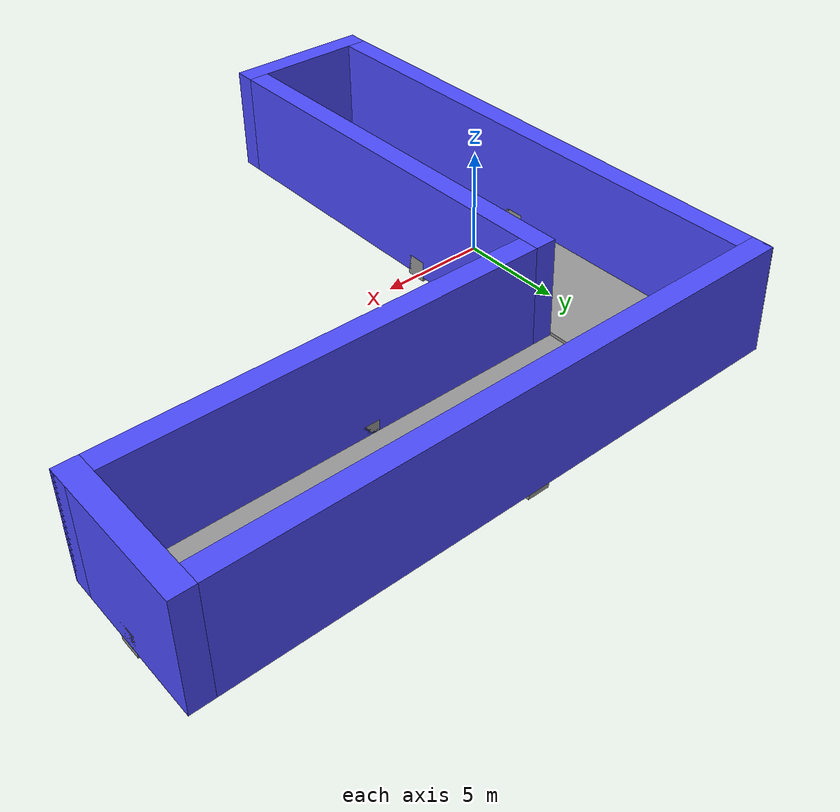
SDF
<?xml version='1.0'?>
<sdf version='1.6'>
  <model name='Corner_pool'>
    <link name='link_0'>
      <pose frame=''>0 0 0.5 0 -0 0</pose>
      <gravity>1</gravity>
      <self_collide>0</self_collide>
      <kinematic>0</kinematic>
      <visual name='visual'>
        <pose frame=''>0 0 0 0 -0 0</pose>
        <geometry>
          <box>
            <size>5 25 0.3</size>
          </box>
        </geometry>
        <material>
          <lighting>1</lighting>
          <script>
            <uri>file://media/materials/scripts/gazebo.material</uri>
            <name>Gazebo/Grey</name>
          </script>
          <ambient>1 1 1 1</ambient>
          <diffuse>0.7 0.7 0.7 1</diffuse>
          <specular>0.01 0.01 0.01 1</specular>
          <emissive>0 0 0 1</emissive>
          <shader type='vertex'>
            <normal_map>__default__</normal_map>
          </shader>
        </material>
        <cast_shadows>1</cast_shadows>
        <transparency>0</transparency>
      </visual>
      <visual name='ModelPreview_0::link_0::visual_1'>
        <pose frame=''>0 0 0 0 -0 0</pose>
        <geometry>
          <box>
            <size>1 1 1</size>
          </box>
        </geometry>
        <material>
          <lighting>1</lighting>
          <script>
            <uri>file://media/materials/scripts/gazebo.material</uri>
            <name>Gazebo/Grey</name>
          </script>
          <ambient>0.3 0.3 0.3 1</ambient>
          <diffuse>0.7 0.7 0.7 1</diffuse>
          <specular>0.01 0.01 0.01 1</specular>
          <emissive>0 0 0 1</emissive>
          <shader type='vertex'>
            <normal_map>__default__</normal_map>
          </shader>
        </material>
        <cast_shadows>1</cast_shadows>
        <transparency>0</transparency>
      </visual>
      <visual name='ModelPreview_0::link_0::visual_2'>
        <pose frame=''>0 0 0 0 -0 0</pose>
        <geometry>
          <box>
            <size>1 1 1</size>
          </box>
        </geometry>
        <material>
          <lighting>1</lighting>
          <script>
            <uri>file://media/materials/scripts/gazebo.material</uri>
            <name>Gazebo/Grey</name>
          </script>
          <ambient>0.3 0.3 0.3 1</ambient>
          <diffuse>0.7 0.7 0.7 1</diffuse>
          <specular>0.01 0.01 0.01 1</specular>
          <emissive>0 0 0 1</emissive>
          <shader type='vertex'>
            <normal_map>__default__</normal_map>
          </shader>
        </material>
        <cast_shadows>1</cast_shadows>
        <transparency>0</transparency>
      </visual>
      <visual name='ModelPreview_0::link_0::visual_3'>
        <pose frame=''>0 0 0 0 -0 0</pose>
        <geometry>
          <box>
            <size>1 1 1</size>
          </box>
        </geometry>
        <material>
          <lighting>1</lighting>
          <script>
            <uri>file://media/materials/scripts/gazebo.material</uri>
            <name>Gazebo/Grey</name>
          </script>
          <ambient>0.3 0.3 0.3 1</ambient>
          <diffuse>0.7 0.7 0.7 1</diffuse>
          <specular>0.01 0.01 0.01 1</specular>
          <emissive>0 0 0 1</emissive>
          <shader type='vertex'>
            <normal_map>__default__</normal_map>
          </shader>
        </material>
        <cast_shadows>1</cast_shadows>
        <transparency>0</transparency>
      </visual>
      <collision name='collision'>
        <laser_retro>0</laser_retro>
        <max_contacts>10</max_contacts>
        <pose frame=''>0 0 0 0 -0 0</pose>
        <geometry>
          <box>
            <size>5 25 0.3</size>
          </box>
        </geometry>
        <surface>
          <friction>
            <ode>
              <mu>1</mu>
              <mu2>1</mu2>
              <fdir1>0 0 0</fdir1>
              <slip1>0</slip1>
              <slip2>0</slip2>
            </ode>
            <torsional>
              <coefficient>1</coefficient>
              <patch_radius>0</patch_radius>
              <surface_radius>0</surface_radius>
              <use_patch_radius>1</use_patch_radius>
              <ode>
                <slip>0</slip>
              </ode>
            </torsional>
          </friction>
          <bounce>
            <restitution_coefficient>0</restitution_coefficient>
            <threshold>1e+06</threshold>
          </bounce>
          <contact>
            <collide_without_contact>0</collide_without_contact>
            <collide_without_contact_bitmask>1</collide_without_contact_bitmask>
            <collide_bitmask>1</collide_bitmask>
            <ode>
              <soft_cfm>0</soft_cfm>
              <soft_erp>0.2</soft_erp>
              <kp>1e+13</kp>
              <kd>1</kd>
              <max_vel>0.01</max_vel>
              <min_depth>0</min_depth>
            </ode>
            <bullet>
              <split_impulse>1</split_impulse>
              <split_impulse_penetration_threshold>-0.01</split_impulse_penetration_threshold>
              <soft_cfm>0</soft_cfm>
              <soft_erp>0.2</soft_erp>
              <kp>1e+13</kp>
              <kd>1</kd>
            </bullet>
          </contact>
        </surface>
      </collision>
    </link>
    <link name='link_1'>
      <pose frame=''>0 10 0.5 0 -0 0</pose>
      <inertial>
        <mass>1</mass>
        <inertia>
          <ixx>0.166667</ixx>
          <ixy>0</ixy>
          <ixz>0</ixz>
          <iyy>0.166667</iyy>
          <iyz>0</iyz>
          <izz>0.166667</izz>
        </inertia>
        <pose frame=''>0 0 0 0 -0 0</pose>
      </inertial>
      <gravity>1</gravity>
      <self_collide>0</self_collide>
      <kinematic>0</kinematic>
      <visual name='visual'>
        <pose frame=''>10 0 -0.15 0 -0 0</pose>
        <geometry>
          <box>
            <size>25 5 0.3</size>
          </box>
        </geometry>
        <material>
          <lighting>1</lighting>
          <script>
            <uri>file://media/materials/scripts/gazebo.material</uri>
            <name>Gazebo/Grey</name>
          </script>
          <ambient>1 1 1 1</ambient>
          <diffuse>0.7 0.7 0.7 1</diffuse>
          <specular>0.01 0.01 0.01 1</specular>
          <emissive>0 0 0 1</emissive>
          <shader type='vertex'>
            <normal_map>__default__</normal_map>
          </shader>
        </material>
        <cast_shadows>1</cast_shadows>
        <transparency>0</transparency>
      </visual>
      <visual name='ModelPreview_0::link_1::visual_2'>
        <pose frame=''>0 0 0 0 -0 0</pose>
        <geometry>
          <box>
            <size>1 1 1</size>
          </box>
        </geometry>
        <material>
          <lighting>1</lighting>
          <script>
            <uri>file://media/materials/scripts/gazebo.material</uri>
            <name>Gazebo/Grey</name>
          </script>
          <ambient>0.3 0.3 0.3 1</ambient>
          <diffuse>0.7 0.7 0.7 1</diffuse>
          <specular>0.01 0.01 0.01 1</specular>
          <emissive>0 0 0 1</emissive>
          <shader type='vertex'>
            <normal_map>__default__</normal_map>
          </shader>
        </material>
        <cast_shadows>1</cast_shadows>
        <transparency>0</transparency>
      </visual>
      <visual name='ModelPreview_0::link_1::visual_1'>
        <pose frame=''>0 0 0 0 -0 0</pose>
        <geometry>
          <box>
            <size>1 1 1</size>
          </box>
        </geometry>
        <material>
          <lighting>1</lighting>
          <script>
            <uri>file://media/materials/scripts/gazebo.material</uri>
            <name>Gazebo/Grey</name>
          </script>
          <ambient>0.3 0.3 0.3 1</ambient>
          <diffuse>0.7 0.7 0.7 1</diffuse>
          <specular>0.01 0.01 0.01 1</specular>
          <emissive>0 0 0 1</emissive>
          <shader type='vertex'>
            <normal_map>__default__</normal_map>
          </shader>
        </material>
        <cast_shadows>1</cast_shadows>
        <transparency>0</transparency>
      </visual>
      <visual name='ModelPreview_0::link_1::visual_3'>
        <pose frame=''>0 0 0 0 -0 0</pose>
        <geometry>
          <box>
            <size>1 1 1</size>
          </box>
        </geometry>
        <material>
          <lighting>1</lighting>
          <script>
            <uri>file://media/materials/scripts/gazebo.material</uri>
            <name>Gazebo/Grey</name>
          </script>
          <ambient>0.3 0.3 0.3 1</ambient>
          <diffuse>0.7 0.7 0.7 1</diffuse>
          <specular>0.01 0.01 0.01 1</specular>
          <emissive>0 0 0 1</emissive>
          <shader type='vertex'>
            <normal_map>__default__</normal_map>
          </shader>
        </material>
        <cast_shadows>1</cast_shadows>
        <transparency>0</transparency>
      </visual>
      <visual name='ModelPreview_0::link_1::visual_4'>
        <pose frame=''>0 0 0 0 -0 0</pose>
        <geometry>
          <box>
            <size>1 1 1</size>
          </box>
        </geometry>
        <material>
          <lighting>1</lighting>
          <script>
            <uri>file://media/materials/scripts/gazebo.material</uri>
            <name>Gazebo/Grey</name>
          </script>
          <ambient>0.3 0.3 0.3 1</ambient>
          <diffuse>0.7 0.7 0.7 1</diffuse>
          <specular>0.01 0.01 0.01 1</specular>
          <emissive>0 0 0 1</emissive>
          <shader type='vertex'>
            <normal_map>__default__</normal_map>
          </shader>
        </material>
        <cast_shadows>1</cast_shadows>
        <transparency>0</transparency>
      </visual>
      <visual name='ModelPreview_0::link_1::visual_5'>
        <pose frame=''>0 0 0 0 -0 0</pose>
        <geometry>
          <box>
            <size>1 1 1</size>
          </box>
        </geometry>
        <material>
          <lighting>1</lighting>
          <script>
            <uri>file://media/materials/scripts/gazebo.material</uri>
            <name>Gazebo/Grey</name>
          </script>
          <ambient>0.3 0.3 0.3 1</ambient>
          <diffuse>0.7 0.7 0.7 1</diffuse>
          <specular>0.01 0.01 0.01 1</specular>
          <emissive>0 0 0 1</emissive>
          <shader type='vertex'>
            <normal_map>__default__</normal_map>
          </shader>
        </material>
        <cast_shadows>1</cast_shadows>
        <transparency>0</transparency>
      </visual>
      <visual name='ModelPreview_0::link_1::visual_6'>
        <pose frame=''>0 0 0 0 -0 0</pose>
        <geometry>
          <box>
            <size>1 1 1</size>
          </box>
        </geometry>
        <material>
          <lighting>1</lighting>
          <script>
            <uri>file://media/materials/scripts/gazebo.material</uri>
            <name>Gazebo/Grey</name>
          </script>
          <ambient>0.3 0.3 0.3 1</ambient>
          <diffuse>0.7 0.7 0.7 1</diffuse>
          <specular>0.01 0.01 0.01 1</specular>
          <emissive>0 0 0 1</emissive>
          <shader type='vertex'>
            <normal_map>__default__</normal_map>
          </shader>
        </material>
        <cast_shadows>1</cast_shadows>
        <transparency>0</transparency>
      </visual>
      <visual name='ModelPreview_0::link_1::visual_7'>
        <pose frame=''>0 0 0 0 -0 0</pose>
        <geometry>
          <box>
            <size>1 1 1</size>
          </box>
        </geometry>
        <material>
          <lighting>1</lighting>
          <script>
            <uri>file://media/materials/scripts/gazebo.material</uri>
            <name>Gazebo/Grey</name>
          </script>
          <ambient>0.3 0.3 0.3 1</ambient>
          <diffuse>0.7 0.7 0.7 1</diffuse>
          <specular>0.01 0.01 0.01 1</specular>
          <emissive>0 0 0 1</emissive>
          <shader type='vertex'>
            <normal_map>__default__</normal_map>
          </shader>
        </material>
        <cast_shadows>1</cast_shadows>
        <transparency>0</transparency>
      </visual>
      <visual name='ModelPreview_0::link_1::visual_8'>
        <pose frame=''>0 0 0 0 -0 0</pose>
        <geometry>
          <box>
            <size>1 1 1</size>
          </box>
        </geometry>
        <material>
          <lighting>1</lighting>
          <script>
            <uri>file://media/materials/scripts/gazebo.material</uri>
            <name>Gazebo/Grey</name>
          </script>
          <ambient>0.3 0.3 0.3 1</ambient>
          <diffuse>0.7 0.7 0.7 1</diffuse>
          <specular>0.01 0.01 0.01 1</specular>
          <emissive>0 0 0 1</emissive>
          <shader type='vertex'>
            <normal_map>__default__</normal_map>
          </shader>
        </material>
        <cast_shadows>1</cast_shadows>
        <transparency>0</transparency>
      </visual>
      <collision name='collision'>
        <laser_retro>0</laser_retro>
        <max_contacts>10</max_contacts>
        <pose frame=''>10 0 -0.15 0 -0 0</pose>
        <geometry>
          <box>
            <size>25 5 0.3</size>
          </box>
        </geometry>
        <surface>
          <friction>
            <ode>
              <mu>1</mu>
              <mu2>1</mu2>
              <fdir1>0 0 0</fdir1>
              <slip1>0</slip1>
              <slip2>0</slip2>
            </ode>
            <torsional>
              <coefficient>1</coefficient>
              <patch_radius>0</patch_radius>
              <surface_radius>0</surface_radius>
              <use_patch_radius>1</use_patch_radius>
              <ode>
                <slip>0</slip>
              </ode>
            </torsional>
          </friction>
          <bounce>
            <restitution_coefficient>0</restitution_coefficient>
            <threshold>1e+06</threshold>
          </bounce>
          <contact>
            <collide_without_contact>0</collide_without_contact>
            <collide_without_contact_bitmask>1</collide_without_contact_bitmask>
            <collide_bitmask>1</collide_bitmask>
            <ode>
              <soft_cfm>0</soft_cfm>
              <soft_erp>0.2</soft_erp>
              <kp>1e+13</kp>
              <kd>1</kd>
              <max_vel>0.01</max_vel>
              <min_depth>0</min_depth>
            </ode>
            <bullet>
              <split_impulse>1</split_impulse>
              <split_impulse_penetration_threshold>-0.01</split_impulse_penetration_threshold>
              <soft_cfm>0</soft_cfm>
              <soft_erp>0.2</soft_erp>
              <kp>1e+13</kp>
              <kd>1</kd>
            </bullet>
          </contact>
        </surface>
      </collision>
    </link>
    <link name='link_2'>
      <pose frame=''>3 0 0.5 0 -0 0</pose>
      <inertial>
        <mass>1</mass>
        <inertia>
          <ixx>0.166667</ixx>
          <ixy>0</ixy>
          <ixz>0</ixz>
          <iyy>0.166667</iyy>
          <iyz>0</iyz>
          <izz>0.166667</izz>
        </inertia>
        <pose frame=''>0 0 0 0 -0 0</pose>
      </inertial>
      <gravity>1</gravity>
      <self_collide>0</self_collide>
      <kinematic>0</kinematic>
      <visual name='visual'>
        <pose frame=''>0 -2.5 2.2 0 -0 0</pose>
        <geometry>
          <box>
            <size>1 20 5</size>
          </box>
        </geometry>
        <material>
          <lighting>1</lighting>
          <script>
            <uri>file://media/materials/scripts/gazebo.material</uri>
            <name>Gazebo/Grey</name>
          </script>
          <ambient>0.3 0.3 1 1</ambient>
          <diffuse>0.7 0.7 0.7 1</diffuse>
          <specular>0.01 0.01 0.01 1</specular>
          <emissive>0 0 0 1</emissive>
          <shader type='vertex'>
            <normal_map>__default__</normal_map>
          </shader>
        </material>
        <cast_shadows>1</cast_shadows>
        <transparency>0</transparency>
      </visual>
      <visual name='ModelPreview_0::link_2::visual_1'>
        <pose frame=''>0 0 0 0 -0 0</pose>
        <geometry>
          <box>
            <size>1 1 1</size>
          </box>
        </geometry>
        <material>
          <lighting>1</lighting>
          <script>
            <uri>file://media/materials/scripts/gazebo.material</uri>
            <name>Gazebo/Grey</name>
          </script>
          <ambient>0.3 0.3 0.3 1</ambient>
          <diffuse>0.7 0.7 0.7 1</diffuse>
          <specular>0.01 0.01 0.01 1</specular>
          <emissive>0 0 0 1</emissive>
          <shader type='vertex'>
            <normal_map>__default__</normal_map>
          </shader>
        </material>
        <cast_shadows>1</cast_shadows>
        <transparency>0</transparency>
      </visual>
      <visual name='ModelPreview_0::link_2::visual_2'>
        <pose frame=''>0 0 0 0 -0 0</pose>
        <geometry>
          <box>
            <size>1 1 1</size>
          </box>
        </geometry>
        <material>
          <lighting>1</lighting>
          <script>
            <uri>file://media/materials/scripts/gazebo.material</uri>
            <name>Gazebo/Grey</name>
          </script>
          <ambient>0.3 0.3 0.3 1</ambient>
          <diffuse>0.7 0.7 0.7 1</diffuse>
          <specular>0.01 0.01 0.01 1</specular>
          <emissive>0 0 0 1</emissive>
          <shader type='vertex'>
            <normal_map>__default__</normal_map>
          </shader>
        </material>
        <cast_shadows>1</cast_shadows>
        <transparency>0</transparency>
      </visual>
      <visual name='ModelPreview_0::link_2::visual_3'>
        <pose frame=''>0 0 0 0 -0 0</pose>
        <geometry>
          <box>
            <size>1 1 1</size>
          </box>
        </geometry>
        <material>
          <lighting>1</lighting>
          <script>
            <uri>file://media/materials/scripts/gazebo.material</uri>
            <name>Gazebo/Grey</name>
          </script>
          <ambient>0.3 0.3 0.3 1</ambient>
          <diffuse>0.7 0.7 0.7 1</diffuse>
          <specular>0.01 0.01 0.01 1</specular>
          <emissive>0 0 0 1</emissive>
          <shader type='vertex'>
            <normal_map>__default__</normal_map>
          </shader>
        </material>
        <cast_shadows>1</cast_shadows>
        <transparency>0</transparency>
      </visual>
      <visual name='ModelPreview_0::link_2::visual_4'>
        <pose frame=''>0 0 0 0 -0 0</pose>
        <geometry>
          <box>
            <size>1 1 1</size>
          </box>
        </geometry>
        <material>
          <lighting>1</lighting>
          <script>
            <uri>file://media/materials/scripts/gazebo.material</uri>
            <name>Gazebo/Grey</name>
          </script>
          <ambient>0.3 0.3 0.3 1</ambient>
          <diffuse>0.7 0.7 0.7 1</diffuse>
          <specular>0.01 0.01 0.01 1</specular>
          <emissive>0 0 0 1</emissive>
          <shader type='vertex'>
            <normal_map>__default__</normal_map>
          </shader>
        </material>
        <cast_shadows>1</cast_shadows>
        <transparency>0</transparency>
      </visual>
      <visual name='ModelPreview_0::link_2::visual_5'>
        <pose frame=''>0 0 0 0 -0 0</pose>
        <geometry>
          <box>
            <size>1 1 1</size>
          </box>
        </geometry>
        <material>
          <lighting>1</lighting>
          <script>
            <uri>file://media/materials/scripts/gazebo.material</uri>
            <name>Gazebo/Grey</name>
          </script>
          <ambient>0.3 0.3 0.3 1</ambient>
          <diffuse>0.7 0.7 0.7 1</diffuse>
          <specular>0.01 0.01 0.01 1</specular>
          <emissive>0 0 0 1</emissive>
          <shader type='vertex'>
            <normal_map>__default__</normal_map>
          </shader>
        </material>
        <cast_shadows>1</cast_shadows>
        <transparency>0</transparency>
      </visual>
      <visual name='ModelPreview_0::link_2::visual_6'>
        <pose frame=''>0 0 0 0 -0 0</pose>
        <geometry>
          <box>
            <size>1 1 1</size>
          </box>
        </geometry>
        <material>
          <lighting>1</lighting>
          <script>
            <uri>file://media/materials/scripts/gazebo.material</uri>
            <name>Gazebo/Grey</name>
          </script>
          <ambient>0.3 0.3 0.3 1</ambient>
          <diffuse>0.7 0.7 0.7 1</diffuse>
          <specular>0.01 0.01 0.01 1</specular>
          <emissive>0 0 0 1</emissive>
          <shader type='vertex'>
            <normal_map>__default__</normal_map>
          </shader>
        </material>
        <cast_shadows>1</cast_shadows>
        <transparency>0</transparency>
      </visual>
      <visual name='ModelPreview_0::link_2::visual_7'>
        <pose frame=''>0 0 0 0 -0 0</pose>
        <geometry>
          <box>
            <size>1 1 1</size>
          </box>
        </geometry>
        <material>
          <lighting>1</lighting>
          <script>
            <uri>file://media/materials/scripts/gazebo.material</uri>
            <name>Gazebo/Grey</name>
          </script>
          <ambient>0.3 0.3 0.3 1</ambient>
          <diffuse>0.7 0.7 0.7 1</diffuse>
          <specular>0.01 0.01 0.01 1</specular>
          <emissive>0 0 0 1</emissive>
          <shader type='vertex'>
            <normal_map>__default__</normal_map>
          </shader>
        </material>
        <cast_shadows>1</cast_shadows>
        <transparency>0</transparency>
      </visual>
      <visual name='ModelPreview_0::link_2::visual_8'>
        <pose frame=''>0 0 0 0 -0 0</pose>
        <geometry>
          <box>
            <size>1 1 1</size>
          </box>
        </geometry>
        <material>
          <lighting>1</lighting>
          <script>
            <uri>file://media/materials/scripts/gazebo.material</uri>
            <name>Gazebo/Grey</name>
          </script>
          <ambient>0.3 0.3 0.3 1</ambient>
          <diffuse>0.7 0.7 0.7 1</diffuse>
          <specular>0.01 0.01 0.01 1</specular>
          <emissive>0 0 0 1</emissive>
          <shader type='vertex'>
            <normal_map>__default__</normal_map>
          </shader>
        </material>
        <cast_shadows>1</cast_shadows>
        <transparency>0</transparency>
      </visual>
      <collision name='collision'>
        <laser_retro>0</laser_retro>
        <max_contacts>10</max_contacts>
        <pose frame=''>0 -2.5 2.2 0 -0 0</pose>
        <geometry>
          <box>
            <size>1 20 5</size>
          </box>
        </geometry>
        <surface>
          <friction>
            <ode>
              <mu>1</mu>
              <mu2>1</mu2>
              <fdir1>0 0 0</fdir1>
              <slip1>0</slip1>
              <slip2>0</slip2>
            </ode>
            <torsional>
              <coefficient>1</coefficient>
              <patch_radius>0</patch_radius>
              <surface_radius>0</surface_radius>
              <use_patch_radius>1</use_patch_radius>
              <ode>
                <slip>0</slip>
              </ode>
            </torsional>
          </friction>
          <bounce>
            <restitution_coefficient>0</restitution_coefficient>
            <threshold>1e+06</threshold>
          </bounce>
          <contact>
            <collide_without_contact>0</collide_without_contact>
            <collide_without_contact_bitmask>1</collide_without_contact_bitmask>
            <collide_bitmask>1</collide_bitmask>
            <ode>
              <soft_cfm>0</soft_cfm>
              <soft_erp>0.2</soft_erp>
              <kp>1e+13</kp>
              <kd>1</kd>
              <max_vel>0.01</max_vel>
              <min_depth>0</min_depth>
            </ode>
            <bullet>
              <split_impulse>1</split_impulse>
              <split_impulse_penetration_threshold>-0.01</split_impulse_penetration_threshold>
              <soft_cfm>0</soft_cfm>
              <soft_erp>0.2</soft_erp>
              <kp>1e+13</kp>
              <kd>1</kd>
            </bullet>
          </contact>
        </surface>
      </collision>
    </link>
    <link name='link_5'>
      <pose frame=''>0 -13 0.5 0 -0 0</pose>
      <inertial>
        <mass>1</mass>
        <inertia>
          <ixx>0.166667</ixx>
          <ixy>0</ixy>
          <ixz>0</ixz>
          <iyy>0.166667</iyy>
          <iyz>0</iyz>
          <izz>0.166667</izz>
        </inertia>
        <pose frame=''>0 0 0 0 -0 0</pose>
      </inertial>
      <gravity>1</gravity>
      <self_collide>0</self_collide>
      <kinematic>0</kinematic>
      <visual name='visual'>
        <pose frame=''>0 0 2.2 0 -0 0</pose>
        <geometry>
          <box>
            <size>7 1 5</size>
          </box>
        </geometry>
        <material>
          <lighting>1</lighting>
          <script>
            <uri>file://media/materials/scripts/gazebo.material</uri>
            <name>Gazebo/Grey</name>
          </script>
          <ambient>0.3 0.3 1 1</ambient>
          <diffuse>0.7 0.7 0.7 1</diffuse>
          <specular>0.01 0.01 0.01 1</specular>
          <emissive>0 0 0 1</emissive>
          <shader type='vertex'>
            <normal_map>__default__</normal_map>
          </shader>
        </material>
        <cast_shadows>1</cast_shadows>
        <transparency>0</transparency>
      </visual>
      <visual name='ModelPreview_0::link_5::visual_2'>
        <pose frame=''>0 0 0 0 -0 0</pose>
        <geometry>
          <box>
            <size>1 1 1</size>
          </box>
        </geometry>
        <material>
          <lighting>1</lighting>
          <script>
            <uri>file://media/materials/scripts/gazebo.material</uri>
            <name>Gazebo/Grey</name>
          </script>
          <ambient>0.3 0.3 0.3 1</ambient>
          <diffuse>0.7 0.7 0.7 1</diffuse>
          <specular>0.01 0.01 0.01 1</specular>
          <emissive>0 0 0 1</emissive>
          <shader type='vertex'>
            <normal_map>__default__</normal_map>
          </shader>
        </material>
        <cast_shadows>1</cast_shadows>
        <transparency>0</transparency>
      </visual>
      <visual name='ModelPreview_0::link_5::visual_1'>
        <pose frame=''>0 0 0 0 -0 0</pose>
        <geometry>
          <box>
            <size>1 1 1</size>
          </box>
        </geometry>
        <material>
          <lighting>1</lighting>
          <script>
            <uri>file://media/materials/scripts/gazebo.material</uri>
            <name>Gazebo/Grey</name>
          </script>
          <ambient>0.3 0.3 0.3 1</ambient>
          <diffuse>0.7 0.7 0.7 1</diffuse>
          <specular>0.01 0.01 0.01 1</specular>
          <emissive>0 0 0 1</emissive>
          <shader type='vertex'>
            <normal_map>__default__</normal_map>
          </shader>
        </material>
        <cast_shadows>1</cast_shadows>
        <transparency>0</transparency>
      </visual>
      <visual name='ModelPreview_0::link_5::visual_3'>
        <pose frame=''>0 0 0 0 -0 0</pose>
        <geometry>
          <box>
            <size>1 1 1</size>
          </box>
        </geometry>
        <material>
          <lighting>1</lighting>
          <script>
            <uri>file://media/materials/scripts/gazebo.material</uri>
            <name>Gazebo/Grey</name>
          </script>
          <ambient>0.3 0.3 0.3 1</ambient>
          <diffuse>0.7 0.7 0.7 1</diffuse>
          <specular>0.01 0.01 0.01 1</specular>
          <emissive>0 0 0 1</emissive>
          <shader type='vertex'>
            <normal_map>__default__</normal_map>
          </shader>
        </material>
        <cast_shadows>1</cast_shadows>
        <transparency>0</transparency>
      </visual>
      <collision name='collision'>
        <laser_retro>0</laser_retro>
        <max_contacts>10</max_contacts>
        <pose frame=''>0 0 2.2 0 -0 0</pose>
        <geometry>
          <box>
            <size>7 1 5</size>
          </box>
        </geometry>
        <surface>
          <friction>
            <ode>
              <mu>1</mu>
              <mu2>1</mu2>
              <fdir1>0 0 0</fdir1>
              <slip1>0</slip1>
              <slip2>0</slip2>
            </ode>
            <torsional>
              <coefficient>1</coefficient>
              <patch_radius>0</patch_radius>
              <surface_radius>0</surface_radius>
              <use_patch_radius>1</use_patch_radius>
              <ode>
                <slip>0</slip>
              </ode>
            </torsional>
          </friction>
          <bounce>
            <restitution_coefficient>0</restitution_coefficient>
            <threshold>1e+06</threshold>
          </bounce>
          <contact>
            <collide_without_contact>0</collide_without_contact>
            <collide_without_contact_bitmask>1</collide_without_contact_bitmask>
            <collide_bitmask>1</collide_bitmask>
            <ode>
              <soft_cfm>0</soft_cfm>
              <soft_erp>0.2</soft_erp>
              <kp>1e+13</kp>
              <kd>1</kd>
              <max_vel>0.01</max_vel>
              <min_depth>0</min_depth>
            </ode>
            <bullet>
              <split_impulse>1</split_impulse>
              <split_impulse_penetration_threshold>-0.01</split_impulse_penetration_threshold>
              <soft_cfm>0</soft_cfm>
              <soft_erp>0.2</soft_erp>
              <kp>1e+13</kp>
              <kd>1</kd>
            </bullet>
          </contact>
        </surface>
      </collision>
    </link>
    <link name='link_6'>
      <pose frame=''>-3 0 0.5 0 -0 0</pose>
      <inertial>
        <mass>1</mass>
        <inertia>
          <ixx>0.166667</ixx>
          <ixy>0</ixy>
          <ixz>0</ixz>
          <iyy>0.166667</iyy>
          <iyz>0</iyz>
          <izz>0.166667</izz>
        </inertia>
        <pose frame=''>0 0 0 0 -0 0</pose>
      </inertial>
      <gravity>1</gravity>
      <self_collide>0</self_collide>
      <kinematic>0</kinematic>
      <visual name='visual'>
        <pose frame=''>0 0 2.2 0 -0 0</pose>
        <geometry>
          <box>
            <size>1 27 5</size>
          </box>
        </geometry>
        <material>
          <lighting>1</lighting>
          <script>
            <uri>file://media/materials/scripts/gazebo.material</uri>
            <name>Gazebo/Grey</name>
          </script>
          <ambient>0.3 0.3 1 1</ambient>
          <diffuse>0.7 0.7 0.7 1</diffuse>
          <specular>0.01 0.01 0.01 1</specular>
          <emissive>0 0 0 1</emissive>
          <shader type='vertex'>
            <normal_map>__default__</normal_map>
          </shader>
        </material>
        <cast_shadows>1</cast_shadows>
        <transparency>0</transparency>
      </visual>
      <visual name='ModelPreview_0::link_6::visual_3'>
        <pose frame=''>0 0 0 0 -0 0</pose>
        <geometry>
          <box>
            <size>1 1 1</size>
          </box>
        </geometry>
        <material>
          <lighting>1</lighting>
          <script>
            <uri>file://media/materials/scripts/gazebo.material</uri>
            <name>Gazebo/Grey</name>
          </script>
          <ambient>0.3 0.3 0.3 1</ambient>
          <diffuse>0.7 0.7 0.7 1</diffuse>
          <specular>0.01 0.01 0.01 1</specular>
          <emissive>0 0 0 1</emissive>
          <shader type='vertex'>
            <normal_map>__default__</normal_map>
          </shader>
        </material>
        <cast_shadows>1</cast_shadows>
        <transparency>0</transparency>
      </visual>
      <visual name='ModelPreview_0::link_6::visual_4'>
        <pose frame=''>0 0 0 0 -0 0</pose>
        <geometry>
          <box>
            <size>1 1 1</size>
          </box>
        </geometry>
        <material>
          <lighting>1</lighting>
          <script>
            <uri>file://media/materials/scripts/gazebo.material</uri>
            <name>Gazebo/Grey</name>
          </script>
          <ambient>0.3 0.3 0.3 1</ambient>
          <diffuse>0.7 0.7 0.7 1</diffuse>
          <specular>0.01 0.01 0.01 1</specular>
          <emissive>0 0 0 1</emissive>
          <shader type='vertex'>
            <normal_map>__default__</normal_map>
          </shader>
        </material>
        <cast_shadows>1</cast_shadows>
        <transparency>0</transparency>
      </visual>
      <visual name='ModelPreview_0::link_6::visual_2'>
        <pose frame=''>0 0 0 0 -0 0</pose>
        <geometry>
          <box>
            <size>1 1 1</size>
          </box>
        </geometry>
        <material>
          <lighting>1</lighting>
          <script>
            <uri>file://media/materials/scripts/gazebo.material</uri>
            <name>Gazebo/Grey</name>
          </script>
          <ambient>0.3 0.3 0.3 1</ambient>
          <diffuse>0.7 0.7 0.7 1</diffuse>
          <specular>0.01 0.01 0.01 1</specular>
          <emissive>0 0 0 1</emissive>
          <shader type='vertex'>
            <normal_map>__default__</normal_map>
          </shader>
        </material>
        <cast_shadows>1</cast_shadows>
        <transparency>0</transparency>
      </visual>
      <visual name='ModelPreview_0::link_6::visual_1'>
        <pose frame=''>0 0 0 0 -0 0</pose>
        <geometry>
          <box>
            <size>1 1 1</size>
          </box>
        </geometry>
        <material>
          <lighting>1</lighting>
          <script>
            <uri>file://media/materials/scripts/gazebo.material</uri>
            <name>Gazebo/Grey</name>
          </script>
          <ambient>0.3 0.3 0.3 1</ambient>
          <diffuse>0.7 0.7 0.7 1</diffuse>
          <specular>0.01 0.01 0.01 1</specular>
          <emissive>0 0 0 1</emissive>
          <shader type='vertex'>
            <normal_map>__default__</normal_map>
          </shader>
        </material>
        <cast_shadows>1</cast_shadows>
        <transparency>0</transparency>
      </visual>
      <collision name='collision'>
        <laser_retro>0</laser_retro>
        <max_contacts>10</max_contacts>
        <pose frame=''>0 0 2.2 0 -0 0</pose>
        <geometry>
          <box>
            <size>1 27 5</size>
          </box>
        </geometry>
        <surface>
          <friction>
            <ode>
              <mu>1</mu>
              <mu2>1</mu2>
              <fdir1>0 0 0</fdir1>
              <slip1>0</slip1>
              <slip2>0</slip2>
            </ode>
            <torsional>
              <coefficient>1</coefficient>
              <patch_radius>0</patch_radius>
              <surface_radius>0</surface_radius>
              <use_patch_radius>1</use_patch_radius>
              <ode>
                <slip>0</slip>
              </ode>
            </torsional>
          </friction>
          <bounce>
            <restitution_coefficient>0</restitution_coefficient>
            <threshold>1e+06</threshold>
          </bounce>
          <contact>
            <collide_without_contact>0</collide_without_contact>
            <collide_without_contact_bitmask>1</collide_without_contact_bitmask>
            <collide_bitmask>1</collide_bitmask>
            <ode>
              <soft_cfm>0</soft_cfm>
              <soft_erp>0.2</soft_erp>
              <kp>1e+13</kp>
              <kd>1</kd>
              <max_vel>0.01</max_vel>
              <min_depth>0</min_depth>
            </ode>
            <bullet>
              <split_impulse>1</split_impulse>
              <split_impulse_penetration_threshold>-0.01</split_impulse_penetration_threshold>
              <soft_cfm>0</soft_cfm>
              <soft_erp>0.2</soft_erp>
              <kp>1e+13</kp>
              <kd>1</kd>
            </bullet>
          </contact>
        </surface>
      </collision>
    </link>
    <link name='link_7'>
      <pose frame=''>9 13 0.5 0 -0 0</pose>
      <inertial>
        <mass>1</mass>
        <inertia>
          <ixx>0.166667</ixx>
          <ixy>0</ixy>
          <ixz>0</ixz>
          <iyy>0.166667</iyy>
          <iyz>0</iyz>
          <izz>0.166667</izz>
        </inertia>
        <pose frame=''>0 0 0 0 -0 0</pose>
      </inertial>
      <gravity>1</gravity>
      <self_collide>0</self_collide>
      <kinematic>0</kinematic>
      <visual name='ModelPreview_0::link_7::visual_8'>
        <pose frame=''>0 0 0 0 -0 0</pose>
        <geometry>
          <box>
            <size>1 1 1</size>
          </box>
        </geometry>
        <material>
          <lighting>1</lighting>
          <script>
            <uri>file://media/materials/scripts/gazebo.material</uri>
            <name>Gazebo/Grey</name>
          </script>
          <ambient>0.3 0.3 0.3 1</ambient>
          <diffuse>0.7 0.7 0.7 1</diffuse>
          <specular>0.01 0.01 0.01 1</specular>
          <emissive>0 0 0 1</emissive>
          <shader type='vertex'>
            <normal_map>__default__</normal_map>
          </shader>
        </material>
        <cast_shadows>1</cast_shadows>
        <transparency>0</transparency>
      </visual>
      <visual name='ModelPreview_0::link_7::visual_2'>
        <pose frame=''>0 0 0 0 -0 0</pose>
        <geometry>
          <box>
            <size>1 1 1</size>
          </box>
        </geometry>
        <material>
          <lighting>1</lighting>
          <script>
            <uri>file://media/materials/scripts/gazebo.material</uri>
            <name>Gazebo/Grey</name>
          </script>
          <ambient>0.3 0.3 0.3 1</ambient>
          <diffuse>0.7 0.7 0.7 1</diffuse>
          <specular>0.01 0.01 0.01 1</specular>
          <emissive>0 0 0 1</emissive>
          <shader type='vertex'>
            <normal_map>__default__</normal_map>
          </shader>
        </material>
        <cast_shadows>1</cast_shadows>
        <transparency>0</transparency>
      </visual>
      <visual name='visual'>
        <pose frame=''>0.5 0 2.2 0 -0 0</pose>
        <geometry>
          <box>
            <size>26 1 5</size>
          </box>
        </geometry>
        <material>
          <lighting>1</lighting>
          <script>
            <uri>file://media/materials/scripts/gazebo.material</uri>
            <name>Gazebo/Grey</name>
          </script>
          <ambient>0.3 0.3 1 1</ambient>
          <diffuse>0.7 0.7 0.7 1</diffuse>
          <specular>0.01 0.01 0.01 1</specular>
          <emissive>0 0 0 1</emissive>
          <shader type='vertex'>
            <normal_map>__default__</normal_map>
          </shader>
        </material>
        <cast_shadows>1</cast_shadows>
        <transparency>0</transparency>
      </visual>
      <visual name='ModelPreview_0::link_7::visual_3'>
        <pose frame=''>0 0 0 0 -0 0</pose>
        <geometry>
          <box>
            <size>1 1 1</size>
          </box>
        </geometry>
        <material>
          <lighting>1</lighting>
          <script>
            <uri>file://media/materials/scripts/gazebo.material</uri>
            <name>Gazebo/Grey</name>
          </script>
          <ambient>0.3 0.3 0.3 1</ambient>
          <diffuse>0.7 0.7 0.7 1</diffuse>
          <specular>0.01 0.01 0.01 1</specular>
          <emissive>0 0 0 1</emissive>
          <shader type='vertex'>
            <normal_map>__default__</normal_map>
          </shader>
        </material>
        <cast_shadows>1</cast_shadows>
        <transparency>0</transparency>
      </visual>
      <visual name='ModelPreview_0::link_7::visual_1'>
        <pose frame=''>0 0 0 0 -0 0</pose>
        <geometry>
          <box>
            <size>1 1 1</size>
          </box>
        </geometry>
        <material>
          <lighting>1</lighting>
          <script>
            <uri>file://media/materials/scripts/gazebo.material</uri>
            <name>Gazebo/Grey</name>
          </script>
          <ambient>0.3 0.3 0.3 1</ambient>
          <diffuse>0.7 0.7 0.7 1</diffuse>
          <specular>0.01 0.01 0.01 1</specular>
          <emissive>0 0 0 1</emissive>
          <shader type='vertex'>
            <normal_map>__default__</normal_map>
          </shader>
        </material>
        <cast_shadows>1</cast_shadows>
        <transparency>0</transparency>
      </visual>
      <visual name='ModelPreview_0::link_7::visual_4'>
        <pose frame=''>0 0 0 0 -0 0</pose>
        <geometry>
          <box>
            <size>1 1 1</size>
          </box>
        </geometry>
        <material>
          <lighting>1</lighting>
          <script>
            <uri>file://media/materials/scripts/gazebo.material</uri>
            <name>Gazebo/Grey</name>
          </script>
          <ambient>0.3 0.3 0.3 1</ambient>
          <diffuse>0.7 0.7 0.7 1</diffuse>
          <specular>0.01 0.01 0.01 1</specular>
          <emissive>0 0 0 1</emissive>
          <shader type='vertex'>
            <normal_map>__default__</normal_map>
          </shader>
        </material>
        <cast_shadows>1</cast_shadows>
        <transparency>0</transparency>
      </visual>
      <visual name='ModelPreview_0::link_7::visual_5'>
        <pose frame=''>0 0 0 0 -0 0</pose>
        <geometry>
          <box>
            <size>1 1 1</size>
          </box>
        </geometry>
        <material>
          <lighting>1</lighting>
          <script>
            <uri>file://media/materials/scripts/gazebo.material</uri>
            <name>Gazebo/Grey</name>
          </script>
          <ambient>0.3 0.3 0.3 1</ambient>
          <diffuse>0.7 0.7 0.7 1</diffuse>
          <specular>0.01 0.01 0.01 1</specular>
          <emissive>0 0 0 1</emissive>
          <shader type='vertex'>
            <normal_map>__default__</normal_map>
          </shader>
        </material>
        <cast_shadows>1</cast_shadows>
        <transparency>0</transparency>
      </visual>
      <visual name='ModelPreview_0::link_7::visual_6'>
        <pose frame=''>0 0 0 0 -0 0</pose>
        <geometry>
          <box>
            <size>1 1 1</size>
          </box>
        </geometry>
        <material>
          <lighting>1</lighting>
          <script>
            <uri>file://media/materials/scripts/gazebo.material</uri>
            <name>Gazebo/Grey</name>
          </script>
          <ambient>0.3 0.3 0.3 1</ambient>
          <diffuse>0.7 0.7 0.7 1</diffuse>
          <specular>0.01 0.01 0.01 1</specular>
          <emissive>0 0 0 1</emissive>
          <shader type='vertex'>
            <normal_map>__default__</normal_map>
          </shader>
        </material>
        <cast_shadows>1</cast_shadows>
        <transparency>0</transparency>
      </visual>
      <visual name='ModelPreview_0::link_7::visual_7'>
        <pose frame=''>0 0 0 0 -0 0</pose>
        <geometry>
          <box>
            <size>1 1 1</size>
          </box>
        </geometry>
        <material>
          <lighting>1</lighting>
          <script>
            <uri>file://media/materials/scripts/gazebo.material</uri>
            <name>Gazebo/Grey</name>
          </script>
          <ambient>0.3 0.3 0.3 1</ambient>
          <diffuse>0.7 0.7 0.7 1</diffuse>
          <specular>0.01 0.01 0.01 1</specular>
          <emissive>0 0 0 1</emissive>
          <shader type='vertex'>
            <normal_map>__default__</normal_map>
          </shader>
        </material>
        <cast_shadows>1</cast_shadows>
        <transparency>0</transparency>
      </visual>
      <collision name='collision'>
        <laser_retro>0</laser_retro>
        <max_contacts>10</max_contacts>
        <pose frame=''>0.5 0 2.2 0 -0 0</pose>
        <geometry>
          <box>
            <size>26 1 5</size>
          </box>
        </geometry>
        <surface>
          <friction>
            <ode>
              <mu>1</mu>
              <mu2>1</mu2>
              <fdir1>0 0 0</fdir1>
              <slip1>0</slip1>
              <slip2>0</slip2>
            </ode>
            <torsional>
              <coefficient>1</coefficient>
              <patch_radius>0</patch_radius>
              <surface_radius>0</surface_radius>
              <use_patch_radius>1</use_patch_radius>
              <ode>
                <slip>0</slip>
              </ode>
            </torsional>
          </friction>
          <bounce>
            <restitution_coefficient>0</restitution_coefficient>
            <threshold>1e+06</threshold>
          </bounce>
          <contact>
            <collide_without_contact>0</collide_without_contact>
            <collide_without_contact_bitmask>1</collide_without_contact_bitmask>
            <collide_bitmask>1</collide_bitmask>
            <ode>
              <soft_cfm>0</soft_cfm>
              <soft_erp>0.2</soft_erp>
              <kp>1e+13</kp>
              <kd>1</kd>
              <max_vel>0.01</max_vel>
              <min_depth>0</min_depth>
            </ode>
            <bullet>
              <split_impulse>1</split_impulse>
              <split_impulse_penetration_threshold>-0.01</split_impulse_penetration_threshold>
              <soft_cfm>0</soft_cfm>
              <soft_erp>0.2</soft_erp>
              <kp>1e+13</kp>
              <kd>1</kd>
            </bullet>
          </contact>
        </surface>
      </collision>
    </link>
    <link name='link_8'>
      <pose frame=''>23 10 0.5 0 -0 0</pose>
      <inertial>
        <mass>1</mass>
        <inertia>
          <ixx>0.166667</ixx>
          <ixy>0</ixy>
          <ixz>0</ixz>
          <iyy>0.166667</iyy>
          <iyz>0</iyz>
          <izz>0.166667</izz>
        </inertia>
        <pose frame=''>0 0 0 0 -0 0</pose>
      </inertial>
      <gravity>1</gravity>
      <self_collide>0</self_collide>
      <kinematic>0</kinematic>
      <visual name='visual'>
        <pose frame=''>0 0 2.2 0 -0 0</pose>
        <geometry>
          <box>
            <size>1 7 5</size>
          </box>
        </geometry>
        <material>
          <lighting>1</lighting>
          <script>
            <uri>file://media/materials/scripts/gazebo.material</uri>
            <name>Gazebo/Grey</name>
          </script>
          <ambient>0.3 0.3 1 1</ambient>
          <diffuse>0.7 0.7 0.7 1</diffuse>
          <specular>0.01 0.01 0.01 1</specular>
          <emissive>0 0 0 1</emissive>
          <shader type='vertex'>
            <normal_map>__default__</normal_map>
          </shader>
        </material>
        <cast_shadows>1</cast_shadows>
        <transparency>0</transparency>
      </visual>
      <visual name='ModelPreview_0::link_8::visual_2'>
        <pose frame=''>0 0 0 0 -0 0</pose>
        <geometry>
          <box>
            <size>1 1 1</size>
          </box>
        </geometry>
        <material>
          <lighting>1</lighting>
          <script>
            <uri>file://media/materials/scripts/gazebo.material</uri>
            <name>Gazebo/Grey</name>
          </script>
          <ambient>0.3 0.3 0.3 1</ambient>
          <diffuse>0.7 0.7 0.7 1</diffuse>
          <specular>0.01 0.01 0.01 1</specular>
          <emissive>0 0 0 1</emissive>
          <shader type='vertex'>
            <normal_map>__default__</normal_map>
          </shader>
        </material>
        <cast_shadows>1</cast_shadows>
        <transparency>0</transparency>
      </visual>
      <visual name='ModelPreview_0::link_8::visual_1'>
        <pose frame=''>0 0 0 0 -0 0</pose>
        <geometry>
          <box>
            <size>1 1 1</size>
          </box>
        </geometry>
        <material>
          <lighting>1</lighting>
          <script>
            <uri>file://media/materials/scripts/gazebo.material</uri>
            <name>Gazebo/Grey</name>
          </script>
          <ambient>0.3 0.3 0.3 1</ambient>
          <diffuse>0.7 0.7 0.7 1</diffuse>
          <specular>0.01 0.01 0.01 1</specular>
          <emissive>0 0 0 1</emissive>
          <shader type='vertex'>
            <normal_map>__default__</normal_map>
          </shader>
        </material>
        <cast_shadows>1</cast_shadows>
        <transparency>0</transparency>
      </visual>
      <visual name='ModelPreview_0::link_8::visual_3'>
        <pose frame=''>0 0 0 0 -0 0</pose>
        <geometry>
          <box>
            <size>1 1 1</size>
          </box>
        </geometry>
        <material>
          <lighting>1</lighting>
          <script>
            <uri>file://media/materials/scripts/gazebo.material</uri>
            <name>Gazebo/Grey</name>
          </script>
          <ambient>0.3 0.3 0.3 1</ambient>
          <diffuse>0.7 0.7 0.7 1</diffuse>
          <specular>0.01 0.01 0.01 1</specular>
          <emissive>0 0 0 1</emissive>
          <shader type='vertex'>
            <normal_map>__default__</normal_map>
          </shader>
        </material>
        <cast_shadows>1</cast_shadows>
        <transparency>0</transparency>
      </visual>
      <visual name='ModelPreview_0::link_8::visual_4'>
        <pose frame=''>0 0 0 0 -0 0</pose>
        <geometry>
          <box>
            <size>1 1 1</size>
          </box>
        </geometry>
        <material>
          <lighting>1</lighting>
          <script>
            <uri>file://media/materials/scripts/gazebo.material</uri>
            <name>Gazebo/Grey</name>
          </script>
          <ambient>0.3 0.3 0.3 1</ambient>
          <diffuse>0.7 0.7 0.7 1</diffuse>
          <specular>0.01 0.01 0.01 1</specular>
          <emissive>0 0 0 1</emissive>
          <shader type='vertex'>
            <normal_map>__default__</normal_map>
          </shader>
        </material>
        <cast_shadows>1</cast_shadows>
        <transparency>0</transparency>
      </visual>
      <collision name='collision'>
        <laser_retro>0</laser_retro>
        <max_contacts>10</max_contacts>
        <pose frame=''>0 0 2.2 0 -0 0</pose>
        <geometry>
          <box>
            <size>1 7 5</size>
          </box>
        </geometry>
        <surface>
          <friction>
            <ode>
              <mu>1</mu>
              <mu2>1</mu2>
              <fdir1>0 0 0</fdir1>
              <slip1>0</slip1>
              <slip2>0</slip2>
            </ode>
            <torsional>
              <coefficient>1</coefficient>
              <patch_radius>0</patch_radius>
              <surface_radius>0</surface_radius>
              <use_patch_radius>1</use_patch_radius>
              <ode>
                <slip>0</slip>
              </ode>
            </torsional>
          </friction>
          <bounce>
            <restitution_coefficient>0</restitution_coefficient>
            <threshold>1e+06</threshold>
          </bounce>
          <contact>
            <collide_without_contact>0</collide_without_contact>
            <collide_without_contact_bitmask>1</collide_without_contact_bitmask>
            <collide_bitmask>1</collide_bitmask>
            <ode>
              <soft_cfm>0</soft_cfm>
              <soft_erp>0.2</soft_erp>
              <kp>1e+13</kp>
              <kd>1</kd>
              <max_vel>0.01</max_vel>
              <min_depth>0</min_depth>
            </ode>
            <bullet>
              <split_impulse>1</split_impulse>
              <split_impulse_penetration_threshold>-0.01</split_impulse_penetration_threshold>
              <soft_cfm>0</soft_cfm>
              <soft_erp>0.2</soft_erp>
              <kp>1e+13</kp>
              <kd>1</kd>
            </bullet>
          </contact>
        </surface>
      </collision>
    </link>
    <link name='link_9'>
      <pose frame=''>12 7 0.5 0 -0 0</pose>
      <inertial>
        <mass>1</mass>
        <inertia>
          <ixx>0.166667</ixx>
          <ixy>0</ixy>
          <ixz>0</ixz>
          <iyy>0.166667</iyy>
          <iyz>0</iyz>
          <izz>0.166667</izz>
        </inertia>
        <pose frame=''>0 0 0 0 -0 0</pose>
      </inertial>
      <gravity>1</gravity>
      <self_collide>0</self_collide>
      <kinematic>0</kinematic>
      <visual name='visual'>
        <pose frame=''>1.5 0 2.2 0 -0 0</pose>
        <geometry>
          <box>
            <size>20 1 5</size>
          </box>
        </geometry>
        <material>
          <lighting>1</lighting>
          <script>
            <uri>file://media/materials/scripts/gazebo.material</uri>
            <name>Gazebo/Grey</name>
          </script>
          <ambient>0.3 0.3 1 1</ambient>
          <diffuse>0.7 0.7 0.7 1</diffuse>
          <specular>0.01 0.01 0.01 1</specular>
          <emissive>0 0 0 1</emissive>
          <shader type='vertex'>
            <normal_map>__default__</normal_map>
          </shader>
        </material>
        <cast_shadows>1</cast_shadows>
        <transparency>0</transparency>
      </visual>
      <visual name='ModelPreview_0::link_9::visual_2'>
        <pose frame=''>0 0 0 0 -0 0</pose>
        <geometry>
          <box>
            <size>1 1 1</size>
          </box>
        </geometry>
        <material>
          <lighting>1</lighting>
          <script>
            <uri>file://media/materials/scripts/gazebo.material</uri>
            <name>Gazebo/Grey</name>
          </script>
          <ambient>0.3 0.3 0.3 1</ambient>
          <diffuse>0.7 0.7 0.7 1</diffuse>
          <specular>0.01 0.01 0.01 1</specular>
          <emissive>0 0 0 1</emissive>
          <shader type='vertex'>
            <normal_map>__default__</normal_map>
          </shader>
        </material>
        <cast_shadows>1</cast_shadows>
        <transparency>0</transparency>
      </visual>
      <visual name='ModelPreview_0::link_9::visual_1'>
        <pose frame=''>0 0 0 0 -0 0</pose>
        <geometry>
          <box>
            <size>1 1 1</size>
          </box>
        </geometry>
        <material>
          <lighting>1</lighting>
          <script>
            <uri>file://media/materials/scripts/gazebo.material</uri>
            <name>Gazebo/Grey</name>
          </script>
          <ambient>0.3 0.3 0.3 1</ambient>
          <diffuse>0.7 0.7 0.7 1</diffuse>
          <specular>0.01 0.01 0.01 1</specular>
          <emissive>0 0 0 1</emissive>
          <shader type='vertex'>
            <normal_map>__default__</normal_map>
          </shader>
        </material>
        <cast_shadows>1</cast_shadows>
        <transparency>0</transparency>
      </visual>
      <visual name='ModelPreview_0::link_9::visual_3'>
        <pose frame=''>0 0 0 0 -0 0</pose>
        <geometry>
          <box>
            <size>1 1 1</size>
          </box>
        </geometry>
        <material>
          <lighting>1</lighting>
          <script>
            <uri>file://media/materials/scripts/gazebo.material</uri>
            <name>Gazebo/Grey</name>
          </script>
          <ambient>0.3 0.3 0.3 1</ambient>
          <diffuse>0.7 0.7 0.7 1</diffuse>
          <specular>0.01 0.01 0.01 1</specular>
          <emissive>0 0 0 1</emissive>
          <shader type='vertex'>
            <normal_map>__default__</normal_map>
          </shader>
        </material>
        <cast_shadows>1</cast_shadows>
        <transparency>0</transparency>
      </visual>
      <visual name='ModelPreview_0::link_9::visual_4'>
        <pose frame=''>0 0 0 0 -0 0</pose>
        <geometry>
          <box>
            <size>1 1 1</size>
          </box>
        </geometry>
        <material>
          <lighting>1</lighting>
          <script>
            <uri>file://media/materials/scripts/gazebo.material</uri>
            <name>Gazebo/Grey</name>
          </script>
          <ambient>0.3 0.3 0.3 1</ambient>
          <diffuse>0.7 0.7 0.7 1</diffuse>
          <specular>0.01 0.01 0.01 1</specular>
          <emissive>0 0 0 1</emissive>
          <shader type='vertex'>
            <normal_map>__default__</normal_map>
          </shader>
        </material>
        <cast_shadows>1</cast_shadows>
        <transparency>0</transparency>
      </visual>
      <visual name='ModelPreview_0::link_9::visual_5'>
        <pose frame=''>0 0 0 0 -0 0</pose>
        <geometry>
          <box>
            <size>1 1 1</size>
          </box>
        </geometry>
        <material>
          <lighting>1</lighting>
          <script>
            <uri>file://media/materials/scripts/gazebo.material</uri>
            <name>Gazebo/Grey</name>
          </script>
          <ambient>0.3 0.3 0.3 1</ambient>
          <diffuse>0.7 0.7 0.7 1</diffuse>
          <specular>0.01 0.01 0.01 1</specular>
          <emissive>0 0 0 1</emissive>
          <shader type='vertex'>
            <normal_map>__default__</normal_map>
          </shader>
        </material>
        <cast_shadows>1</cast_shadows>
        <transparency>0</transparency>
      </visual>
      <visual name='ModelPreview_0::link_9::visual_6'>
        <pose frame=''>0 0 0 0 -0 0</pose>
        <geometry>
          <box>
            <size>1 1 1</size>
          </box>
        </geometry>
        <material>
          <lighting>1</lighting>
          <script>
            <uri>file://media/materials/scripts/gazebo.material</uri>
            <name>Gazebo/Grey</name>
          </script>
          <ambient>0.3 0.3 0.3 1</ambient>
          <diffuse>0.7 0.7 0.7 1</diffuse>
          <specular>0.01 0.01 0.01 1</specular>
          <emissive>0 0 0 1</emissive>
          <shader type='vertex'>
            <normal_map>__default__</normal_map>
          </shader>
        </material>
        <cast_shadows>1</cast_shadows>
        <transparency>0</transparency>
      </visual>
      <visual name='ModelPreview_0::link_9::visual_7'>
        <pose frame=''>0 0 0 0 -0 0</pose>
        <geometry>
          <box>
            <size>1 1 1</size>
          </box>
        </geometry>
        <material>
          <lighting>1</lighting>
          <script>
            <uri>file://media/materials/scripts/gazebo.material</uri>
            <name>Gazebo/Grey</name>
          </script>
          <ambient>0.3 0.3 0.3 1</ambient>
          <diffuse>0.7 0.7 0.7 1</diffuse>
          <specular>0.01 0.01 0.01 1</specular>
          <emissive>0 0 0 1</emissive>
          <shader type='vertex'>
            <normal_map>__default__</normal_map>
          </shader>
        </material>
        <cast_shadows>1</cast_shadows>
        <transparency>0</transparency>
      </visual>
      <visual name='ModelPreview_0::link_9::visual_8'>
        <pose frame=''>0 0 0 0 -0 0</pose>
        <geometry>
          <box>
            <size>1 1 1</size>
          </box>
        </geometry>
        <material>
          <lighting>1</lighting>
          <script>
            <uri>file://media/materials/scripts/gazebo.material</uri>
            <name>Gazebo/Grey</name>
          </script>
          <ambient>0.3 0.3 0.3 1</ambient>
          <diffuse>0.7 0.7 0.7 1</diffuse>
          <specular>0.01 0.01 0.01 1</specular>
          <emissive>0 0 0 1</emissive>
          <shader type='vertex'>
            <normal_map>__default__</normal_map>
          </shader>
        </material>
        <cast_shadows>1</cast_shadows>
        <transparency>0</transparency>
      </visual>
      <collision name='collision'>
        <laser_retro>0</laser_retro>
        <max_contacts>10</max_contacts>
        <pose frame=''>1.5 0 2.2 0 -0 0</pose>
        <geometry>
          <box>
            <size>20 1 5</size>
          </box>
        </geometry>
        <surface>
          <friction>
            <ode>
              <mu>1</mu>
              <mu2>1</mu2>
              <fdir1>0 0 0</fdir1>
              <slip1>0</slip1>
              <slip2>0</slip2>
            </ode>
            <torsional>
              <coefficient>1</coefficient>
              <patch_radius>0</patch_radius>
              <surface_radius>0</surface_radius>
              <use_patch_radius>1</use_patch_radius>
              <ode>
                <slip>0</slip>
              </ode>
            </torsional>
          </friction>
          <bounce>
            <restitution_coefficient>0</restitution_coefficient>
            <threshold>1e+06</threshold>
          </bounce>
          <contact>
            <collide_without_contact>0</collide_without_contact>
            <collide_without_contact_bitmask>1</collide_without_contact_bitmask>
            <collide_bitmask>1</collide_bitmask>
            <ode>
              <soft_cfm>0</soft_cfm>
              <soft_erp>0.2</soft_erp>
              <kp>1e+13</kp>
              <kd>1</kd>
              <max_vel>0.01</max_vel>
              <min_depth>0</min_depth>
            </ode>
            <bullet>
              <split_impulse>1</split_impulse>
              <split_impulse_penetration_threshold>-0.01</split_impulse_penetration_threshold>
              <soft_cfm>0</soft_cfm>
              <soft_erp>0.2</soft_erp>
              <kp>1e+13</kp>
              <kd>1</kd>
            </bullet>
          </contact>
        </surface>
      </collision>
    </link>
    <joint name='link_0_JOINT_0' type='revolute'>
      <parent>link_0</parent>
      <child>link_1</child>
      <pose frame=''>0 0 0 0 -0 0</pose>
      <axis>
        <xyz>1 0 0</xyz>
        <use_parent_model_frame>0</use_parent_model_frame>
        <limit>
          <lower>-1.79769e+308</lower>
          <upper>1.79769e+308</upper>
          <effort>-1</effort>
          <velocity>-1</velocity>
        </limit>
        <dynamics>
          <spring_reference>0</spring_reference>
          <spring_stiffness>0</spring_stiffness>
          <damping>0</damping>
        </dynamics>
      </axis>
      <physics>
        <ode>
          <limit>
            <cfm>0</cfm>
            <erp>0.2</erp>
          </limit>
          <suspension>
            <cfm>0</cfm>
            <erp>0.2</erp>
          </suspension>
        </ode>
      </physics>
    </joint>
    <joint name='link_0_JOINT_1' type='revolute'>
      <parent>link_0</parent>
      <child>link_2</child>
      <pose frame=''>0 0 0 0 -0 0</pose>
      <axis>
        <xyz>1 0 0</xyz>
        <use_parent_model_frame>0</use_parent_model_frame>
        <limit>
          <lower>-1.79769e+308</lower>
          <upper>1.79769e+308</upper>
          <effort>-1</effort>
          <velocity>-1</velocity>
        </limit>
        <dynamics>
          <spring_reference>0</spring_reference>
          <spring_stiffness>0</spring_stiffness>
          <damping>0</damping>
        </dynamics>
      </axis>
      <physics>
        <ode>
          <limit>
            <cfm>0</cfm>
            <erp>0.2</erp>
          </limit>
          <suspension>
            <cfm>0</cfm>
            <erp>0.2</erp>
          </suspension>
        </ode>
      </physics>
    </joint>
    <joint name='link_0_JOINT_2' type='revolute'>
      <parent>link_0</parent>
      <child>link_5</child>
      <pose frame=''>0 0 0 0 -0 0</pose>
      <axis>
        <xyz>1 0 0</xyz>
        <use_parent_model_frame>0</use_parent_model_frame>
        <limit>
          <lower>-1.79769e+308</lower>
          <upper>1.79769e+308</upper>
          <effort>-1</effort>
          <velocity>-1</velocity>
        </limit>
        <dynamics>
          <spring_reference>0</spring_reference>
          <spring_stiffness>0</spring_stiffness>
          <damping>0</damping>
        </dynamics>
      </axis>
      <physics>
        <ode>
          <limit>
            <cfm>0</cfm>
            <erp>0.2</erp>
          </limit>
          <suspension>
            <cfm>0</cfm>
            <erp>0.2</erp>
          </suspension>
        </ode>
      </physics>
    </joint>
    <joint name='link_0_JOINT_3' type='revolute'>
      <parent>link_0</parent>
      <child>link_6</child>
      <pose frame=''>0 0 0 0 -0 0</pose>
      <axis>
        <xyz>1 0 0</xyz>
        <use_parent_model_frame>0</use_parent_model_frame>
        <limit>
          <lower>-1.79769e+308</lower>
          <upper>1.79769e+308</upper>
          <effort>-1</effort>
          <velocity>-1</velocity>
        </limit>
        <dynamics>
          <spring_reference>0</spring_reference>
          <spring_stiffness>0</spring_stiffness>
          <damping>0</damping>
        </dynamics>
      </axis>
      <physics>
        <ode>
          <limit>
            <cfm>0</cfm>
            <erp>0.2</erp>
          </limit>
          <suspension>
            <cfm>0</cfm>
            <erp>0.2</erp>
          </suspension>
        </ode>
      </physics>
    </joint>
    <joint name='link_0_JOINT_4' type='revolute'>
      <parent>link_0</parent>
      <child>link_7</child>
      <pose frame=''>0 0 0 0 -0 0</pose>
      <axis>
        <xyz>1 0 0</xyz>
        <use_parent_model_frame>0</use_parent_model_frame>
        <limit>
          <lower>-1.79769e+308</lower>
          <upper>1.79769e+308</upper>
          <effort>-1</effort>
          <velocity>-1</velocity>
        </limit>
        <dynamics>
          <spring_reference>0</spring_reference>
          <spring_stiffness>0</spring_stiffness>
          <damping>0</damping>
        </dynamics>
      </axis>
      <physics>
        <ode>
          <limit>
            <cfm>0</cfm>
            <erp>0.2</erp>
          </limit>
          <suspension>
            <cfm>0</cfm>
            <erp>0.2</erp>
          </suspension>
        </ode>
      </physics>
    </joint>
    <joint name='link_0_JOINT_5' type='revolute'>
      <parent>link_0</parent>
      <child>link_9</child>
      <pose frame=''>0 0 0 0 -0 0</pose>
      <axis>
        <xyz>1 0 0</xyz>
        <use_parent_model_frame>0</use_parent_model_frame>
        <limit>
          <lower>-1.79769e+308</lower>
          <upper>1.79769e+308</upper>
          <effort>-1</effort>
          <velocity>-1</velocity>
        </limit>
        <dynamics>
          <spring_reference>0</spring_reference>
          <spring_stiffness>0</spring_stiffness>
          <damping>0</damping>
        </dynamics>
      </axis>
      <physics>
        <ode>
          <limit>
            <cfm>0</cfm>
            <erp>0.2</erp>
          </limit>
          <suspension>
            <cfm>0</cfm>
            <erp>0.2</erp>
          </suspension>
        </ode>
      </physics>
    </joint>
    <joint name='link_0_JOINT_6' type='revolute'>
      <parent>link_0</parent>
      <child>link_8</child>
      <pose frame=''>0 0 0 0 -0 0</pose>
      <axis>
        <xyz>1 0 0</xyz>
        <use_parent_model_frame>0</use_parent_model_frame>
        <limit>
          <lower>-1.79769e+308</lower>
          <upper>1.79769e+308</upper>
          <effort>-1</effort>
          <velocity>-1</velocity>
        </limit>
        <dynamics>
          <spring_reference>0</spring_reference>
          <spring_stiffness>0</spring_stiffness>
          <damping>0</damping>
        </dynamics>
      </axis>
      <physics>
        <ode>
          <limit>
            <cfm>0</cfm>
            <erp>0.2</erp>
          </limit>
          <suspension>
            <cfm>0</cfm>
            <erp>0.2</erp>
          </suspension>
        </ode>
      </physics>
    </joint>
    <static>1</static>
    <allow_auto_disable>1</allow_auto_disable>
  </model>
</sdf>
